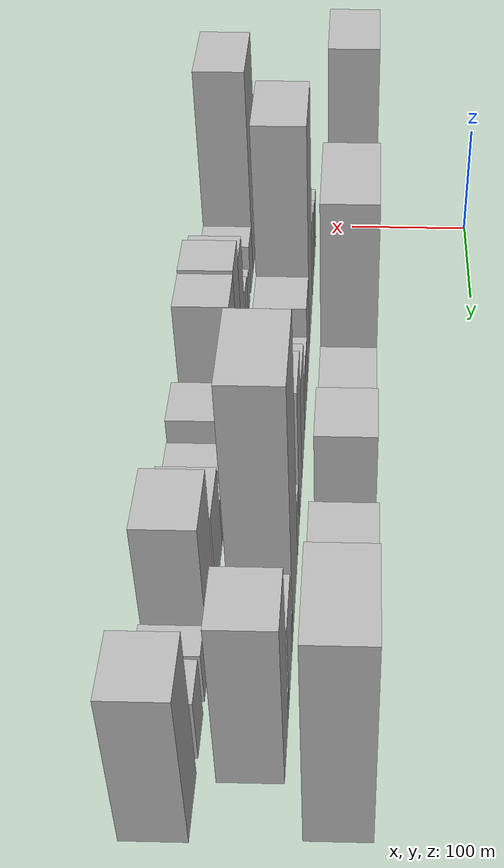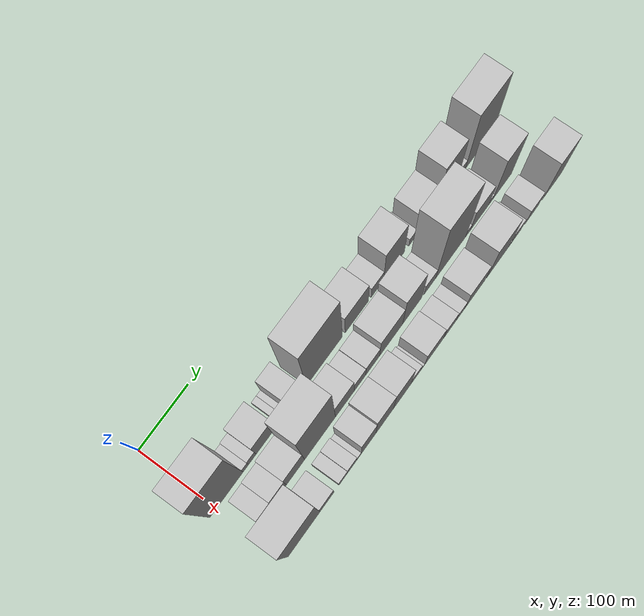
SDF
<sdf version="1.6">
 <world name="default">
  <model name="building_18">
   <static>1</static>
   <pose>100.0000 20.3426 0 0.000000 0.000000 0.000000</pose>
   <link name="link">
    <pose>0 0 102.00 0 0 0</pose>
    <collision name="collision"><geometry><box><size>40.0000 66.8698 204.0000</size></box></geometry></collision>
    <visual name="visual">
     <cast_shadows>0</cast_shadows>
     <geometry><box><size>40.0000 66.8698 204.0000</size></box></geometry>
     <material>
      <script>
       <uri>model://HANNAS_wall/materials/scripts</uri>
       <uri>model://HANNAS_wall/materials/textures</uri>
       <name>vrc/HANNAS_wall</name>
      </script>
     </material>
    </visual>
   </link>
  </model>
  <model name="building_19">
   <static>1</static>
   <pose>100.0000 59.2627 0 0.000000 0.000000 0.000000</pose>
   <link name="link">
    <pose>0 0 12.00 0 0 0</pose>
    <collision name="collision"><geometry><box><size>40.0000 10.9704 24.0000</size></box></geometry></collision>
    <visual name="visual">
     <cast_shadows>0</cast_shadows>
     <geometry><box><size>40.0000 10.9704 24.0000</size></box></geometry>
     <material>
      <script>
       <uri>model://HANNAS_wall/materials/scripts</uri>
       <uri>model://HANNAS_wall/materials/textures</uri>
       <name>vrc/HANNAS_wall</name>
      </script>
     </material>
    </visual>
   </link>
  </model>
  <model name="building_20">
   <static>1</static>
   <pose>100.0000 72.4985 0 0.000000 0.000000 0.000000</pose>
   <link name="link">
    <pose>0 0 15.00 0 0 0</pose>
    <collision name="collision"><geometry><box><size>40.0000 15.5013 30.0000</size></box></geometry></collision>
    <visual name="visual">
     <cast_shadows>0</cast_shadows>
     <geometry><box><size>40.0000 15.5013 30.0000</size></box></geometry>
     <material>
      <script>
       <uri>model://HANNAS_wall/materials/scripts</uri>
       <uri>model://HANNAS_wall/materials/textures</uri>
       <name>vrc/HANNAS_wall</name>
      </script>
     </material>
    </visual>
   </link>
  </model>
  <model name="building_21">
   <static>1</static>
   <pose>100.0000 100.2305 0 0.000000 0.000000 0.000000</pose>
   <link name="link">
    <pose>0 0 36.00 0 0 0</pose>
    <collision name="collision"><geometry><box><size>40.0000 39.9627 72.0000</size></box></geometry></collision>
    <visual name="visual">
     <cast_shadows>0</cast_shadows>
     <geometry><box><size>40.0000 39.9627 72.0000</size></box></geometry>
     <material>
      <script>
       <uri>model://HANNAS_wall/materials/scripts</uri>
       <uri>model://HANNAS_wall/materials/textures</uri>
       <name>vrc/HANNAS_wall</name>
      </script>
     </material>
    </visual>
   </link>
  </model>
  <model name="building_22">
   <static>1</static>
   <pose>100.0000 131.3151 0 0.000000 0.000000 0.000000</pose>
   <link name="link">
    <pose>0 0 10.50 0 0 0</pose>
    <collision name="collision"><geometry><box><size>40.0000 10.2065 21.0000</size></box></geometry></collision>
    <visual name="visual">
     <cast_shadows>0</cast_shadows>
     <geometry><box><size>40.0000 10.2065 21.0000</size></box></geometry>
     <material>
      <script>
       <uri>model://HANNAS_wall/materials/scripts</uri>
       <uri>model://HANNAS_wall/materials/textures</uri>
       <name>vrc/HANNAS_wall</name>
      </script>
     </material>
    </visual>
   </link>
  </model>
  <model name="building_23">
   <static>1</static>
   <pose>100.0000 140.7610 0 0.000000 0.000000 0.000000</pose>
   <link name="link">
    <pose>0 0 10.50 0 0 0</pose>
    <collision name="collision"><geometry><box><size>40.0000 8.6855 21.0000</size></box></geometry></collision>
    <visual name="visual">
     <cast_shadows>0</cast_shadows>
     <geometry><box><size>40.0000 8.6855 21.0000</size></box></geometry>
     <material>
      <script>
       <uri>model://HANNAS_wall/materials/scripts</uri>
       <uri>model://HANNAS_wall/materials/textures</uri>
       <name>vrc/HANNAS_wall</name>
      </script>
     </material>
    </visual>
   </link>
  </model>
  <model name="building_24">
   <static>1</static>
   <pose>100.0000 159.5130 0 0.000000 0.000000 0.000000</pose>
   <link name="link">
    <pose>0 0 46.50 0 0 0</pose>
    <collision name="collision"><geometry><box><size>40.0000 28.8184 93.0000</size></box></geometry></collision>
    <visual name="visual">
     <cast_shadows>0</cast_shadows>
     <geometry><box><size>40.0000 28.8184 93.0000</size></box></geometry>
     <material>
      <script>
       <uri>model://HANNAS_wall/materials/scripts</uri>
       <uri>model://HANNAS_wall/materials/textures</uri>
       <name>vrc/HANNAS_wall</name>
      </script>
     </material>
    </visual>
   </link>
  </model>
  <model name="building_25">
   <static>1</static>
   <pose>100.0000 221.8698 0 0.000000 0.000000 0.000000</pose>
   <link name="link">
    <pose>0 0 100.50 0 0 0</pose>
    <collision name="collision"><geometry><box><size>40.0000 75.8951 201.0000</size></box></geometry></collision>
    <visual name="visual">
     <cast_shadows>0</cast_shadows>
     <geometry><box><size>40.0000 75.8951 201.0000</size></box></geometry>
     <material>
      <script>
       <uri>model://HANNAS_wall/materials/scripts</uri>
       <uri>model://HANNAS_wall/materials/textures</uri>
       <name>vrc/HANNAS_wall</name>
      </script>
     </material>
    </visual>
   </link>
  </model>
  <model name="building_26">
   <static>1</static>
   <pose>100.0000 290.8363 0 0.000000 0.000000 0.000000</pose>
   <link name="link">
    <pose>0 0 42.00 0 0 0</pose>
    <collision name="collision"><geometry><box><size>40.0000 50.0380 84.0000</size></box></geometry></collision>
    <visual name="visual">
     <cast_shadows>0</cast_shadows>
     <geometry><box><size>40.0000 50.0380 84.0000</size></box></geometry>
     <material>
      <script>
       <uri>model://HANNAS_wall/materials/scripts</uri>
       <uri>model://HANNAS_wall/materials/textures</uri>
       <name>vrc/HANNAS_wall</name>
      </script>
     </material>
    </visual>
   </link>
  </model>
  <model name="building_27">
   <static>1</static>
   <pose>100.0000 335.2928 0 0.000000 0.000000 0.000000</pose>
   <link name="link">
    <pose>0 0 22.50 0 0 0</pose>
    <collision name="collision"><geometry><box><size>40.0000 26.8749 45.0000</size></box></geometry></collision>
    <visual name="visual">
     <cast_shadows>0</cast_shadows>
     <geometry><box><size>40.0000 26.8749 45.0000</size></box></geometry>
     <material>
      <script>
       <uri>model://HANNAS_wall/materials/scripts</uri>
       <uri>model://HANNAS_wall/materials/textures</uri>
       <name>vrc/HANNAS_wall</name>
      </script>
     </material>
    </visual>
   </link>
  </model>
  <model name="building_28">
   <static>1</static>
   <pose>100.0000 371.4529 0 0.000000 0.000000 0.000000</pose>
   <link name="link">
    <pose>0 0 60.00 0 0 0</pose>
    <collision name="collision"><geometry><box><size>40.0000 45.4452 120.0000</size></box></geometry></collision>
    <visual name="visual">
     <cast_shadows>0</cast_shadows>
     <geometry><box><size>40.0000 45.4452 120.0000</size></box></geometry>
     <material>
      <script>
       <uri>model://HANNAS_wall/materials/scripts</uri>
       <uri>model://HANNAS_wall/materials/textures</uri>
       <name>vrc/HANNAS_wall</name>
      </script>
     </material>
    </visual>
   </link>
  </model>
  <model name="building_29">
   <static>1</static>
   <pose>100.0000 412.3087 0 0.000000 0.000000 0.000000</pose>
   <link name="link">
    <pose>0 0 15.00 0 0 0</pose>
    <collision name="collision"><geometry><box><size>40.0000 16.2664 30.0000</size></box></geometry></collision>
    <visual name="visual">
     <cast_shadows>0</cast_shadows>
     <geometry><box><size>40.0000 16.2664 30.0000</size></box></geometry>
     <material>
      <script>
       <uri>model://HANNAS_wall/materials/scripts</uri>
       <uri>model://HANNAS_wall/materials/textures</uri>
       <name>vrc/HANNAS_wall</name>
      </script>
     </material>
    </visual>
   </link>
  </model>
  <model name="building_30">
   <static>1</static>
   <pose>100.0000 446.6647 0 0.000000 0.000000 0.000000</pose>
   <link name="link">
    <pose>0 0 37.50 0 0 0</pose>
    <collision name="collision"><geometry><box><size>40.0000 44.4457 75.0000</size></box></geometry></collision>
    <visual name="visual">
     <cast_shadows>0</cast_shadows>
     <geometry><box><size>40.0000 44.4457 75.0000</size></box></geometry>
     <material>
      <script>
       <uri>model://HANNAS_wall/materials/scripts</uri>
       <uri>model://HANNAS_wall/materials/textures</uri>
       <name>vrc/HANNAS_wall</name>
      </script>
     </material>
    </visual>
   </link>
  </model>
  <model name="building_31">
   <static>1</static>
   <pose>100.0000 491.4737 0 0.000000 0.000000 0.000000</pose>
   <link name="link">
    <pose>0 0 70.50 0 0 0</pose>
    <collision name="collision"><geometry><box><size>40.0000 45.1723 141.0000</size></box></geometry></collision>
    <visual name="visual">
     <cast_shadows>0</cast_shadows>
     <geometry><box><size>40.0000 45.1723 141.0000</size></box></geometry>
     <material>
      <script>
       <uri>model://HANNAS_wall/materials/scripts</uri>
       <uri>model://HANNAS_wall/materials/textures</uri>
       <name>vrc/HANNAS_wall</name>
      </script>
     </material>
    </visual>
   </link>
  </model>
  <model name="building_32">
   <static>1</static>
   <pose>100.0000 522.6050 0 0.000000 0.000000 0.000000</pose>
   <link name="link">
    <pose>0 0 16.50 0 0 0</pose>
    <collision name="collision"><geometry><box><size>40.0000 17.0903 33.0000</size></box></geometry></collision>
    <visual name="visual">
     <cast_shadows>0</cast_shadows>
     <geometry><box><size>40.0000 17.0903 33.0000</size></box></geometry>
     <material>
      <script>
       <uri>model://HANNAS_wall/materials/scripts</uri>
       <uri>model://HANNAS_wall/materials/textures</uri>
       <name>vrc/HANNAS_wall</name>
      </script>
     </material>
    </visual>
   </link>
  </model>
  <model name="building_33">
   <static>1</static>
   <pose>100.0000 563.8923 0 0.000000 0.000000 0.000000</pose>
   <link name="link">
    <pose>0 0 88.50 0 0 0</pose>
    <collision name="collision"><geometry><box><size>40.0000 65.4842 177.0000</size></box></geometry></collision>
    <visual name="visual">
     <cast_shadows>0</cast_shadows>
     <geometry><box><size>40.0000 65.4842 177.0000</size></box></geometry>
     <material>
      <script>
       <uri>model://HANNAS_wall/materials/scripts</uri>
       <uri>model://HANNAS_wall/materials/textures</uri>
       <name>vrc/HANNAS_wall</name>
      </script>
     </material>
    </visual>
   </link>
  </model>
  <model name="building_49">
   <static>1</static>
   <pose>152.0000 30.0480 0 0.000000 0.000000 0.000000</pose>
   <link name="link">
    <pose>0 0 25.50 0 0 0</pose>
    <collision name="collision"><geometry><box><size>40.0000 26.0298 51.0000</size></box></geometry></collision>
    <visual name="visual">
     <cast_shadows>0</cast_shadows>
     <geometry><box><size>40.0000 26.0298 51.0000</size></box></geometry>
     <material>
      <script>
       <uri>model://HANNAS_wall/materials/scripts</uri>
       <uri>model://HANNAS_wall/materials/textures</uri>
       <name>vrc/HANNAS_wall</name>
      </script>
     </material>
    </visual>
   </link>
  </model>
  <model name="building_50">
   <static>1</static>
   <pose>152.0000 57.5717 0 0.000000 0.000000 0.000000</pose>
   <link name="link">
    <pose>0 0 28.50 0 0 0</pose>
    <collision name="collision"><geometry><box><size>40.0000 29.0176 57.0000</size></box></geometry></collision>
    <visual name="visual">
     <cast_shadows>0</cast_shadows>
     <geometry><box><size>40.0000 29.0176 57.0000</size></box></geometry>
     <material>
      <script>
       <uri>model://HANNAS_wall/materials/scripts</uri>
       <uri>model://HANNAS_wall/materials/textures</uri>
       <name>vrc/HANNAS_wall</name>
      </script>
     </material>
    </visual>
   </link>
  </model>
  <model name="building_51">
   <static>1</static>
   <pose>152.0000 90.7704 0 0.000000 0.000000 0.000000</pose>
   <link name="link">
    <pose>0 0 36.00 0 0 0</pose>
    <collision name="collision"><geometry><box><size>40.0000 37.3799 72.0000</size></box></geometry></collision>
    <visual name="visual">
     <cast_shadows>0</cast_shadows>
     <geometry><box><size>40.0000 37.3799 72.0000</size></box></geometry>
     <material>
      <script>
       <uri>model://HANNAS_wall/materials/scripts</uri>
       <uri>model://HANNAS_wall/materials/textures</uri>
       <name>vrc/HANNAS_wall</name>
      </script>
     </material>
    </visual>
   </link>
  </model>
  <model name="building_52">
   <static>1</static>
   <pose>152.0000 141.3842 0 0.000000 0.000000 0.000000</pose>
   <link name="link">
    <pose>0 0 103.50 0 0 0</pose>
    <collision name="collision"><geometry><box><size>40.0000 63.8476 207.0000</size></box></geometry></collision>
    <visual name="visual">
     <cast_shadows>0</cast_shadows>
     <geometry><box><size>40.0000 63.8476 207.0000</size></box></geometry>
     <material>
      <script>
       <uri>model://HANNAS_wall/materials/scripts</uri>
       <uri>model://HANNAS_wall/materials/textures</uri>
       <name>vrc/HANNAS_wall</name>
      </script>
     </material>
    </visual>
   </link>
  </model>
  <model name="building_53">
   <static>1</static>
   <pose>152.0000 192.9601 0 0.000000 0.000000 0.000000</pose>
   <link name="link">
    <pose>0 0 37.50 0 0 0</pose>
    <collision name="collision"><geometry><box><size>40.0000 39.3041 75.0000</size></box></geometry></collision>
    <visual name="visual">
     <cast_shadows>0</cast_shadows>
     <geometry><box><size>40.0000 39.3041 75.0000</size></box></geometry>
     <material>
      <script>
       <uri>model://HANNAS_wall/materials/scripts</uri>
       <uri>model://HANNAS_wall/materials/textures</uri>
       <name>vrc/HANNAS_wall</name>
      </script>
     </material>
    </visual>
   </link>
  </model>
  <model name="building_54">
   <static>1</static>
   <pose>152.0000 225.0005 0 0.000000 0.000000 0.000000</pose>
   <link name="link">
    <pose>0 0 24.00 0 0 0</pose>
    <collision name="collision"><geometry><box><size>40.0000 24.7766 48.0000</size></box></geometry></collision>
    <visual name="visual">
     <cast_shadows>0</cast_shadows>
     <geometry><box><size>40.0000 24.7766 48.0000</size></box></geometry>
     <material>
      <script>
       <uri>model://HANNAS_wall/materials/scripts</uri>
       <uri>model://HANNAS_wall/materials/textures</uri>
       <name>vrc/HANNAS_wall</name>
      </script>
     </material>
    </visual>
   </link>
  </model>
  <model name="building_55">
   <static>1</static>
   <pose>152.0000 252.0934 0 0.000000 0.000000 0.000000</pose>
   <link name="link">
    <pose>0 0 25.50 0 0 0</pose>
    <collision name="collision"><geometry><box><size>40.0000 29.4092 51.0000</size></box></geometry></collision>
    <visual name="visual">
     <cast_shadows>0</cast_shadows>
     <geometry><box><size>40.0000 29.4092 51.0000</size></box></geometry>
     <material>
      <script>
       <uri>model://HANNAS_wall/materials/scripts</uri>
       <uri>model://HANNAS_wall/materials/textures</uri>
       <name>vrc/HANNAS_wall</name>
      </script>
     </material>
    </visual>
   </link>
  </model>
  <model name="building_56">
   <static>1</static>
   <pose>152.0000 291.6287 0 0.000000 0.000000 0.000000</pose>
   <link name="link">
    <pose>0 0 43.50 0 0 0</pose>
    <collision name="collision"><geometry><box><size>40.0000 49.6615 87.0000</size></box></geometry></collision>
    <visual name="visual">
     <cast_shadows>0</cast_shadows>
     <geometry><box><size>40.0000 49.6615 87.0000</size></box></geometry>
     <material>
      <script>
       <uri>model://HANNAS_wall/materials/scripts</uri>
       <uri>model://HANNAS_wall/materials/textures</uri>
       <name>vrc/HANNAS_wall</name>
      </script>
     </material>
    </visual>
   </link>
  </model>
  <model name="building_57">
   <static>1</static>
   <pose>152.0000 337.3594 0 0.000000 0.000000 0.000000</pose>
   <link name="link">
    <pose>0 0 61.50 0 0 0</pose>
    <collision name="collision"><geometry><box><size>40.0000 41.7998 123.0000</size></box></geometry></collision>
    <visual name="visual">
     <cast_shadows>0</cast_shadows>
     <geometry><box><size>40.0000 41.7998 123.0000</size></box></geometry>
     <material>
      <script>
       <uri>model://HANNAS_wall/materials/scripts</uri>
       <uri>model://HANNAS_wall/materials/textures</uri>
       <name>vrc/HANNAS_wall</name>
      </script>
     </material>
    </visual>
   </link>
  </model>
  <model name="building_58">
   <static>1</static>
   <pose>152.0000 376.0126 0 0.000000 0.000000 0.000000</pose>
   <link name="link">
    <pose>0 0 22.50 0 0 0</pose>
    <collision name="collision"><geometry><box><size>40.0000 25.5067 45.0000</size></box></geometry></collision>
    <visual name="visual">
     <cast_shadows>0</cast_shadows>
     <geometry><box><size>40.0000 25.5067 45.0000</size></box></geometry>
     <material>
      <script>
       <uri>model://HANNAS_wall/materials/scripts</uri>
       <uri>model://HANNAS_wall/materials/textures</uri>
       <name>vrc/HANNAS_wall</name>
      </script>
     </material>
    </visual>
   </link>
  </model>
  <model name="building_59">
   <static>1</static>
   <pose>152.0000 422.1957 0 0.000000 0.000000 0.000000</pose>
   <link name="link">
    <pose>0 0 108.00 0 0 0</pose>
    <collision name="collision"><geometry><box><size>40.0000 66.8594 216.0000</size></box></geometry></collision>
    <visual name="visual">
     <cast_shadows>0</cast_shadows>
     <geometry><box><size>40.0000 66.8594 216.0000</size></box></geometry>
     <material>
      <script>
       <uri>model://HANNAS_wall/materials/scripts</uri>
       <uri>model://HANNAS_wall/materials/textures</uri>
       <name>vrc/HANNAS_wall</name>
      </script>
     </material>
    </visual>
   </link>
  </model>
  <model name="building_60">
   <static>1</static>
   <pose>152.0000 461.0626 0 0.000000 0.000000 0.000000</pose>
   <link name="link">
    <pose>0 0 13.50 0 0 0</pose>
    <collision name="collision"><geometry><box><size>40.0000 10.8743 27.0000</size></box></geometry></collision>
    <visual name="visual">
     <cast_shadows>0</cast_shadows>
     <geometry><box><size>40.0000 10.8743 27.0000</size></box></geometry>
     <material>
      <script>
       <uri>model://HANNAS_wall/materials/scripts</uri>
       <uri>model://HANNAS_wall/materials/textures</uri>
       <name>vrc/HANNAS_wall</name>
      </script>
     </material>
    </visual>
   </link>
  </model>
  <model name="building_61">
   <static>1</static>
   <pose>152.0000 487.5101 0 0.000000 0.000000 0.000000</pose>
   <link name="link">
    <pose>0 0 37.50 0 0 0</pose>
    <collision name="collision"><geometry><box><size>40.0000 42.0208 75.0000</size></box></geometry></collision>
    <visual name="visual">
     <cast_shadows>0</cast_shadows>
     <geometry><box><size>40.0000 42.0208 75.0000</size></box></geometry>
     <material>
      <script>
       <uri>model://HANNAS_wall/materials/scripts</uri>
       <uri>model://HANNAS_wall/materials/textures</uri>
       <name>vrc/HANNAS_wall</name>
      </script>
     </material>
    </visual>
   </link>
  </model>
  <model name="building_62">
   <static>1</static>
   <pose>152.0000 513.2353 0 0.000000 0.000000 0.000000</pose>
   <link name="link">
    <pose>0 0 10.50 0 0 0</pose>
    <collision name="collision"><geometry><box><size>40.0000 9.4297 21.0000</size></box></geometry></collision>
    <visual name="visual">
     <cast_shadows>0</cast_shadows>
     <geometry><box><size>40.0000 9.4297 21.0000</size></box></geometry>
     <material>
      <script>
       <uri>model://HANNAS_wall/materials/scripts</uri>
       <uri>model://HANNAS_wall/materials/textures</uri>
       <name>vrc/HANNAS_wall</name>
      </script>
     </material>
    </visual>
   </link>
  </model>
  <model name="building_63">
   <static>1</static>
   <pose>152.0000 539.3859 0 0.000000 0.000000 0.000000</pose>
   <link name="link">
    <pose>0 0 70.50 0 0 0</pose>
    <collision name="collision"><geometry><box><size>40.0000 42.8715 141.0000</size></box></geometry></collision>
    <visual name="visual">
     <cast_shadows>0</cast_shadows>
     <geometry><box><size>40.0000 42.8715 141.0000</size></box></geometry>
     <material>
      <script>
       <uri>model://HANNAS_wall/materials/scripts</uri>
       <uri>model://HANNAS_wall/materials/textures</uri>
       <name>vrc/HANNAS_wall</name>
      </script>
     </material>
    </visual>
   </link>
  </model>
  <model name="building_81">
   <static>1</static>
   <pose>204.0000 37.5431 0 0.000000 0.000000 0.000000</pose>
   <link name="link">
    <pose>0 0 96.00 0 0 0</pose>
    <collision name="collision"><geometry><box><size>40.0000 65.1049 192.0000</size></box></geometry></collision>
    <visual name="visual">
     <cast_shadows>0</cast_shadows>
     <geometry><box><size>40.0000 65.1049 192.0000</size></box></geometry>
     <material>
      <script>
       <uri>model://HANNAS_wall/materials/scripts</uri>
       <uri>model://HANNAS_wall/materials/textures</uri>
       <name>vrc/HANNAS_wall</name>
      </script>
     </material>
    </visual>
   </link>
  </model>
  <model name="building_82">
   <static>1</static>
   <pose>204.0000 84.4044 0 0.000000 0.000000 0.000000</pose>
   <link name="link">
    <pose>0 0 24.00 0 0 0</pose>
    <collision name="collision"><geometry><box><size>40.0000 28.6175 48.0000</size></box></geometry></collision>
    <visual name="visual">
     <cast_shadows>0</cast_shadows>
     <geometry><box><size>40.0000 28.6175 48.0000</size></box></geometry>
     <material>
      <script>
       <uri>model://HANNAS_wall/materials/scripts</uri>
       <uri>model://HANNAS_wall/materials/textures</uri>
       <name>vrc/HANNAS_wall</name>
      </script>
     </material>
    </visual>
   </link>
  </model>
  <model name="building_83">
   <static>1</static>
   <pose>204.0000 117.6810 0 0.000000 0.000000 0.000000</pose>
   <link name="link">
    <pose>0 0 16.50 0 0 0</pose>
    <collision name="collision"><geometry><box><size>40.0000 17.9357 33.0000</size></box></geometry></collision>
    <visual name="visual">
     <cast_shadows>0</cast_shadows>
     <geometry><box><size>40.0000 17.9357 33.0000</size></box></geometry>
     <material>
      <script>
       <uri>model://HANNAS_wall/materials/scripts</uri>
       <uri>model://HANNAS_wall/materials/textures</uri>
       <name>vrc/HANNAS_wall</name>
      </script>
     </material>
    </visual>
   </link>
  </model>
  <model name="building_84">
   <static>1</static>
   <pose>204.0000 136.4431 0 0.000000 0.000000 0.000000</pose>
   <link name="link">
    <pose>0 0 19.50 0 0 0</pose>
    <collision name="collision"><geometry><box><size>40.0000 19.5885 39.0000</size></box></geometry></collision>
    <visual name="visual">
     <cast_shadows>0</cast_shadows>
     <geometry><box><size>40.0000 19.5885 39.0000</size></box></geometry>
     <material>
      <script>
       <uri>model://HANNAS_wall/materials/scripts</uri>
       <uri>model://HANNAS_wall/materials/textures</uri>
       <name>vrc/HANNAS_wall</name>
      </script>
     </material>
    </visual>
   </link>
  </model>
  <model name="building_85">
   <static>1</static>
   <pose>204.0000 150.6640 0 0.000000 0.000000 0.000000</pose>
   <link name="link">
    <pose>0 0 10.50 0 0 0</pose>
    <collision name="collision"><geometry><box><size>40.0000 8.8533 21.0000</size></box></geometry></collision>
    <visual name="visual">
     <cast_shadows>0</cast_shadows>
     <geometry><box><size>40.0000 8.8533 21.0000</size></box></geometry>
     <material>
      <script>
       <uri>model://HANNAS_wall/materials/scripts</uri>
       <uri>model://HANNAS_wall/materials/textures</uri>
       <name>vrc/HANNAS_wall</name>
      </script>
     </material>
    </visual>
   </link>
  </model>
  <model name="building_86">
   <static>1</static>
   <pose>204.0000 170.3398 0 0.000000 0.000000 0.000000</pose>
   <link name="link">
    <pose>0 0 49.50 0 0 0</pose>
    <collision name="collision"><geometry><box><size>40.0000 30.4982 99.0000</size></box></geometry></collision>
    <visual name="visual">
     <cast_shadows>0</cast_shadows>
     <geometry><box><size>40.0000 30.4982 99.0000</size></box></geometry>
     <material>
      <script>
       <uri>model://HANNAS_wall/materials/scripts</uri>
       <uri>model://HANNAS_wall/materials/textures</uri>
       <name>vrc/HANNAS_wall</name>
      </script>
     </material>
    </visual>
   </link>
  </model>
  <model name="building_87">
   <static>1</static>
   <pose>204.0000 204.1676 0 0.000000 0.000000 0.000000</pose>
   <link name="link">
    <pose>0 0 58.50 0 0 0</pose>
    <collision name="collision"><geometry><box><size>40.0000 37.1576 117.0000</size></box></geometry></collision>
    <visual name="visual">
     <cast_shadows>0</cast_shadows>
     <geometry><box><size>40.0000 37.1576 117.0000</size></box></geometry>
     <material>
      <script>
       <uri>model://HANNAS_wall/materials/scripts</uri>
       <uri>model://HANNAS_wall/materials/textures</uri>
       <name>vrc/HANNAS_wall</name>
      </script>
     </material>
    </visual>
   </link>
  </model>
  <model name="building_88">
   <static>1</static>
   <pose>204.0000 241.7422 0 0.000000 0.000000 0.000000</pose>
   <link name="link">
    <pose>0 0 57.00 0 0 0</pose>
    <collision name="collision"><geometry><box><size>40.0000 37.9915 114.0000</size></box></geometry></collision>
    <visual name="visual">
     <cast_shadows>0</cast_shadows>
     <geometry><box><size>40.0000 37.9915 114.0000</size></box></geometry>
     <material>
      <script>
       <uri>model://HANNAS_wall/materials/scripts</uri>
       <uri>model://HANNAS_wall/materials/textures</uri>
       <name>vrc/HANNAS_wall</name>
      </script>
     </material>
    </visual>
   </link>
  </model>
  <model name="building_89">
   <static>1</static>
   <pose>204.0000 271.2526 0 0.000000 0.000000 0.000000</pose>
   <link name="link">
    <pose>0 0 19.50 0 0 0</pose>
    <collision name="collision"><geometry><box><size>40.0000 21.0292 39.0000</size></box></geometry></collision>
    <visual name="visual">
     <cast_shadows>0</cast_shadows>
     <geometry><box><size>40.0000 21.0292 39.0000</size></box></geometry>
     <material>
      <script>
       <uri>model://HANNAS_wall/materials/scripts</uri>
       <uri>model://HANNAS_wall/materials/textures</uri>
       <name>vrc/HANNAS_wall</name>
      </script>
     </material>
    </visual>
   </link>
  </model>
  <model name="building_90">
   <static>1</static>
   <pose>204.0000 285.5115 0 0.000000 0.000000 0.000000</pose>
   <link name="link">
    <pose>0 0 7.50 0 0 0</pose>
    <collision name="collision"><geometry><box><size>40.0000 7.4887 15.0000</size></box></geometry></collision>
    <visual name="visual">
     <cast_shadows>0</cast_shadows>
     <geometry><box><size>40.0000 7.4887 15.0000</size></box></geometry>
     <material>
      <script>
       <uri>model://HANNAS_wall/materials/scripts</uri>
       <uri>model://HANNAS_wall/materials/textures</uri>
       <name>vrc/HANNAS_wall</name>
      </script>
     </material>
    </visual>
   </link>
  </model>
  <model name="building_91">
   <static>1</static>
   <pose>204.0000 308.9591 0 0.000000 0.000000 0.000000</pose>
   <link name="link">
    <pose>0 0 34.50 0 0 0</pose>
    <collision name="collision"><geometry><box><size>40.0000 39.4064 69.0000</size></box></geometry></collision>
    <visual name="visual">
     <cast_shadows>0</cast_shadows>
     <geometry><box><size>40.0000 39.4064 69.0000</size></box></geometry>
     <material>
      <script>
       <uri>model://HANNAS_wall/materials/scripts</uri>
       <uri>model://HANNAS_wall/materials/textures</uri>
       <name>vrc/HANNAS_wall</name>
      </script>
     </material>
    </visual>
   </link>
  </model>
  <model name="building_92">
   <static>1</static>
   <pose>204.0000 344.8199 0 0.000000 0.000000 0.000000</pose>
   <link name="link">
    <pose>0 0 25.50 0 0 0</pose>
    <collision name="collision"><geometry><box><size>40.0000 26.3152 51.0000</size></box></geometry></collision>
    <visual name="visual">
     <cast_shadows>0</cast_shadows>
     <geometry><box><size>40.0000 26.3152 51.0000</size></box></geometry>
     <material>
      <script>
       <uri>model://HANNAS_wall/materials/scripts</uri>
       <uri>model://HANNAS_wall/materials/textures</uri>
       <name>vrc/HANNAS_wall</name>
      </script>
     </material>
    </visual>
   </link>
  </model>
  <model name="building_93">
   <static>1</static>
   <pose>204.0000 368.1082 0 0.000000 0.000000 0.000000</pose>
   <link name="link">
    <pose>0 0 19.50 0 0 0</pose>
    <collision name="collision"><geometry><box><size>40.0000 20.2614 39.0000</size></box></geometry></collision>
    <visual name="visual">
     <cast_shadows>0</cast_shadows>
     <geometry><box><size>40.0000 20.2614 39.0000</size></box></geometry>
     <material>
      <script>
       <uri>model://HANNAS_wall/materials/scripts</uri>
       <uri>model://HANNAS_wall/materials/textures</uri>
       <name>vrc/HANNAS_wall</name>
      </script>
     </material>
    </visual>
   </link>
  </model>
  <model name="building_94">
   <static>1</static>
   <pose>204.0000 400.3468 0 0.000000 0.000000 0.000000</pose>
   <link name="link">
    <pose>0 0 37.50 0 0 0</pose>
    <collision name="collision"><geometry><box><size>40.0000 44.2158 75.0000</size></box></geometry></collision>
    <visual name="visual">
     <cast_shadows>0</cast_shadows>
     <geometry><box><size>40.0000 44.2158 75.0000</size></box></geometry>
     <material>
      <script>
       <uri>model://HANNAS_wall/materials/scripts</uri>
       <uri>model://HANNAS_wall/materials/textures</uri>
       <name>vrc/HANNAS_wall</name>
      </script>
     </material>
    </visual>
   </link>
  </model>
  <model name="building_95">
   <static>1</static>
   <pose>204.0000 451.9430 0 0.000000 0.000000 0.000000</pose>
   <link name="link">
    <pose>0 0 61.50 0 0 0</pose>
    <collision name="collision"><geometry><box><size>40.0000 48.9768 123.0000</size></box></geometry></collision>
    <visual name="visual">
     <cast_shadows>0</cast_shadows>
     <geometry><box><size>40.0000 48.9768 123.0000</size></box></geometry>
     <material>
      <script>
       <uri>model://HANNAS_wall/materials/scripts</uri>
       <uri>model://HANNAS_wall/materials/textures</uri>
       <name>vrc/HANNAS_wall</name>
      </script>
     </material>
    </visual>
   </link>
  </model>
  <model name="building_96">
   <static>1</static>
   <pose>204.0000 479.5840 0 0.000000 0.000000 0.000000</pose>
   <link name="link">
    <pose>0 0 7.50 0 0 0</pose>
    <collision name="collision"><geometry><box><size>40.0000 6.3052 15.0000</size></box></geometry></collision>
    <visual name="visual">
     <cast_shadows>0</cast_shadows>
     <geometry><box><size>40.0000 6.3052 15.0000</size></box></geometry>
     <material>
      <script>
       <uri>model://HANNAS_wall/materials/scripts</uri>
       <uri>model://HANNAS_wall/materials/textures</uri>
       <name>vrc/HANNAS_wall</name>
      </script>
     </material>
    </visual>
   </link>
  </model>
  <model name="building_97">
   <static>1</static>
   <pose>204.0000 494.0577 0 0.000000 0.000000 0.000000</pose>
   <link name="link">
    <pose>0 0 22.50 0 0 0</pose>
    <collision name="collision"><geometry><box><size>40.0000 22.6421 45.0000</size></box></geometry></collision>
    <visual name="visual">
     <cast_shadows>0</cast_shadows>
     <geometry><box><size>40.0000 22.6421 45.0000</size></box></geometry>
     <material>
      <script>
       <uri>model://HANNAS_wall/materials/scripts</uri>
       <uri>model://HANNAS_wall/materials/textures</uri>
       <name>vrc/HANNAS_wall</name>
      </script>
     </material>
    </visual>
   </link>
  </model>
  <model name="building_98">
   <static>1</static>
   <pose>204.0000 529.7689 0 0.000000 0.000000 0.000000</pose>
   <link name="link">
    <pose>0 0 27.00 0 0 0</pose>
    <collision name="collision"><geometry><box><size>40.0000 30.7802 54.0000</size></box></geometry></collision>
    <visual name="visual">
     <cast_shadows>0</cast_shadows>
     <geometry><box><size>40.0000 30.7802 54.0000</size></box></geometry>
     <material>
      <script>
       <uri>model://HANNAS_wall/materials/scripts</uri>
       <uri>model://HANNAS_wall/materials/textures</uri>
       <name>vrc/HANNAS_wall</name>
      </script>
     </material>
    </visual>
   </link>
  </model>
  <model name="building_99">
   <static>1</static>
   <pose>204.0000 577.1317 0 0.000000 0.000000 0.000000</pose>
   <link name="link">
    <pose>0 0 66.00 0 0 0</pose>
    <collision name="collision"><geometry><box><size>40.0000 43.9454 132.0000</size></box></geometry></collision>
    <visual name="visual">
     <cast_shadows>0</cast_shadows>
     <geometry><box><size>40.0000 43.9454 132.0000</size></box></geometry>
     <material>
      <script>
       <uri>model://HANNAS_wall/materials/scripts</uri>
       <uri>model://HANNAS_wall/materials/textures</uri>
       <name>vrc/HANNAS_wall</name>
      </script>
     </material>
    </visual>
   </link>
  </model>
 </world>
</sdf>
